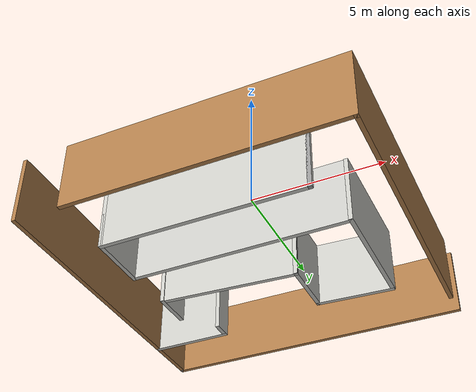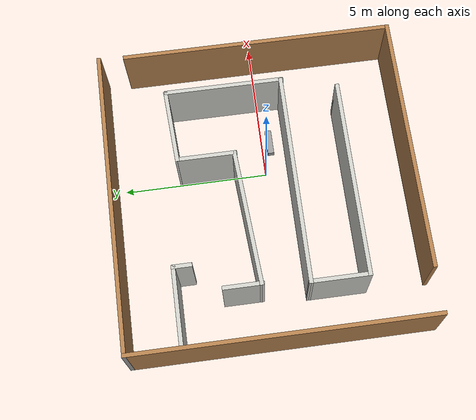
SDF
<?xml version='1.0'?>
<sdf version='1.7'>
  <model name='robot_camera_world'>
    <link name='link_0'>
      <inertial>
        <mass>1</mass>
        <inertia>
          <ixx>0.166667</ixx>
          <ixy>0</ixy>
          <ixz>0</ixz>
          <iyy>0.166667</iyy>
          <iyz>0</iyz>
          <izz>0.166667</izz>
        </inertia>
        <pose>0 0 0 0 -0 0</pose>
      </inertial>
      <pose>0.003185 -0.09834 2.91744 0 -0 0</pose>
      <gravity>1</gravity>
      <self_collide>0</self_collide>
      <kinematic>0</kinematic>
      <enable_wind>0</enable_wind>
      <visual name='visual'>
        <pose>0 0 0 0 -0 0</pose>
        <geometry>
          <box>
            <size>0.8 0.2 0.2</size>
          </box>
        </geometry>
        <material>
          <lighting>1</lighting>
          <script>
            <uri>file://media/materials/scripts/gazebo.material</uri>
            <name>Gazebo/Grey</name>
          </script>
          <shader type='pixel'>
            <normal_map>__default__</normal_map>
          </shader>
          <ambient>0.3 0.3 0.3 1</ambient>
          <diffuse>0.7 0.7 0.7 1</diffuse>
          <specular>0.01 0.01 0.01 1</specular>
          <emissive>0 0 0 1</emissive>
        </material>
        <transparency>0</transparency>
        <cast_shadows>1</cast_shadows>
      </visual>
      <collision name='collision'>
        <laser_retro>0</laser_retro>
        <max_contacts>10</max_contacts>
        <pose>0 0 0 0 -0 0</pose>
        <geometry>
          <box>
            <size>0.8 0.2 0.2</size>
          </box>
        </geometry>
        <surface>
          <friction>
            <ode>
              <mu>1</mu>
              <mu2>1</mu2>
              <fdir1>0 0 0</fdir1>
              <slip1>0</slip1>
              <slip2>0</slip2>
            </ode>
            <torsional>
              <coefficient>1</coefficient>
              <patch_radius>0</patch_radius>
              <surface_radius>0</surface_radius>
              <use_patch_radius>1</use_patch_radius>
              <ode>
                <slip>0</slip>
              </ode>
            </torsional>
          </friction>
          <bounce>
            <restitution_coefficient>0</restitution_coefficient>
            <threshold>1e+06</threshold>
          </bounce>
          <contact>
            <collide_without_contact>0</collide_without_contact>
            <collide_without_contact_bitmask>1</collide_without_contact_bitmask>
            <collide_bitmask>1</collide_bitmask>
            <ode>
              <soft_cfm>0</soft_cfm>
              <soft_erp>0.2</soft_erp>
              <kp>1e+13</kp>
              <kd>1</kd>
              <max_vel>0.01</max_vel>
              <min_depth>0</min_depth>
            </ode>
            <bullet>
              <split_impulse>1</split_impulse>
              <split_impulse_penetration_threshold>-0.01</split_impulse_penetration_threshold>
              <soft_cfm>0</soft_cfm>
              <soft_erp>0.2</soft_erp>
              <kp>1e+13</kp>
              <kd>1</kd>
            </bullet>
          </contact>
        </surface>
      </collision>
    </link>
    <model name='small_maze'>
      <pose>-0.003188 0.09834 -2.91744 0 -0 0</pose>
      <link name='Wall_16'>
        <collision name='Wall_16_Collision'>
          <geometry>
            <box>
              <size>11.5 0.15 2.5</size>
            </box>
          </geometry>
          <pose>0 0 1.25 0 -0 0</pose>
        </collision>
        <visual name='Wall_16_Visual'>
          <pose>0 0 1.25 0 -0 0</pose>
          <geometry>
            <box>
              <size>11.5 0.15 2.5</size>
            </box>
          </geometry>
          <material>
            <script>
              <uri>file://media/materials/scripts/gazebo.material</uri>
              <name>Gazebo/Wood</name>
            </script>
            <ambient>1 1 1 1</ambient>
          </material>
          <meta>
            <layer>0</layer>
          </meta>
        </visual>
        <pose>0 5.55 0 0 -0 3.14159</pose>
      </link>
      <link name='Wall_17'>
        <collision name='Wall_17_Collision'>
          <geometry>
            <box>
              <size>0.15 0.15 2.5</size>
            </box>
          </geometry>
          <pose>0 0 1.25 0 -0 0</pose>
        </collision>
        <visual name='Wall_17_Visual'>
          <pose>0 0 1.25 0 -0 0</pose>
          <geometry>
            <box>
              <size>0.15 0.15 2.5</size>
            </box>
          </geometry>
          <material>
            <script>
              <uri>file://media/materials/scripts/gazebo.material</uri>
              <name>Gazebo/Grey</name>
            </script>
            <ambient>1 1 1 1</ambient>
          </material>
          <meta>
            <layer>0</layer>
          </meta>
        </visual>
        <pose>-5.675 5.55 0 0 -0 0</pose>
      </link>
      <link name='Wall_18'>
        <collision name='Wall_18_Collision'>
          <geometry>
            <box>
              <size>11.25 0.15 2.5</size>
            </box>
          </geometry>
          <pose>0 0 1.25 0 -0 0</pose>
        </collision>
        <visual name='Wall_18_Visual'>
          <pose>0 0 1.25 0 -0 0</pose>
          <geometry>
            <box>
              <size>11.25 0.15 2.5</size>
            </box>
          </geometry>
          <material>
            <script>
              <uri>file://media/materials/scripts/gazebo.material</uri>
              <name>Gazebo/Wood</name>
            </script>
            <ambient>1 1 1 1</ambient>
          </material>
          <meta>
            <layer>0</layer>
          </meta>
        </visual>
        <pose>-5.675 0 0 0 -0 -1.5708</pose>
      </link>
      <link name='Wall_20'>
        <collision name='Wall_20_Collision'>
          <geometry>
            <box>
              <size>10.25 0.15 2.5</size>
            </box>
          </geometry>
          <pose>0 0 1.25 0 -0 0</pose>
        </collision>
        <visual name='Wall_20_Visual'>
          <pose>0 0 1.25 0 -0 0</pose>
          <geometry>
            <box>
              <size>10.25 0.15 2.5</size>
            </box>
          </geometry>
          <material>
            <script>
              <uri>file://media/materials/scripts/gazebo.material</uri>
              <name>Gazebo/Wood</name>
            </script>
            <ambient>1 1 1 1</ambient>
          </material>
          <meta>
            <layer>0</layer>
          </meta>
        </visual>
        <pose>5.64798 -0.5 0 0 -0 1.5708</pose>
      </link>
      <link name='Wall_25'>
        <collision name='Wall_25_Collision'>
          <geometry>
            <box>
              <size>1.5 0.15 2.5</size>
            </box>
          </geometry>
          <pose>0 0 1.25 0 -0 0</pose>
        </collision>
        <visual name='Wall_25_Visual'>
          <pose>0 0 1.25 0 -0 0</pose>
          <geometry>
            <box>
              <size>1.5 0.15 2.5</size>
            </box>
          </geometry>
          <material>
            <script>
              <uri>file://media/materials/scripts/gazebo.material</uri>
              <name>Gazebo/CeilingTiled</name>
            </script>
            <ambient>1 1 1 1</ambient>
          </material>
          <meta>
            <layer>0</layer>
          </meta>
        </visual>
        <pose>-3.78664 1.2164 0 0 -0 -1.5708</pose>
      </link>
      <link name='Wall_26'>
        <collision name='Wall_26_Collision'>
          <geometry>
            <box>
              <size>5.17173 0.15 2.5</size>
            </box>
          </geometry>
          <pose>0 0 1.25 0 -0 0</pose>
        </collision>
        <visual name='Wall_26_Visual'>
          <pose>0 0 1.25 0 -0 0</pose>
          <geometry>
            <box>
              <size>5.17173 0.15 2.5</size>
            </box>
          </geometry>
          <material>
            <script>
              <uri>file://media/materials/scripts/gazebo.material</uri>
              <name>Gazebo/CeilingTiled</name>
            </script>
            <ambient>1 1 1 1</ambient>
          </material>
          <meta>
            <layer>0</layer>
          </meta>
        </visual>
        <pose>-1.28174 0.740897 0 0 -0 0.068916</pose>
      </link>
      <link name='Wall_27'>
        <collision name='Wall_27_Collision'>
          <geometry>
            <box>
              <size>2.25 0.15 2.5</size>
            </box>
          </geometry>
          <pose>0 0 1.25 0 -0 0</pose>
        </collision>
        <visual name='Wall_27_Visual'>
          <pose>0 0 1.25 0 -0 0</pose>
          <geometry>
            <box>
              <size>2.25 0.15 2.5</size>
            </box>
          </geometry>
          <material>
            <script>
              <uri>file://media/materials/scripts/gazebo.material</uri>
              <name>Gazebo/CeilingTiled</name>
            </script>
            <ambient>1 1 1 1</ambient>
          </material>
          <meta>
            <layer>0</layer>
          </meta>
        </visual>
        <pose>1.22317 1.9372 0 0 -0 1.5708</pose>
      </link>
      <link name='Wall_28'>
        <collision name='Wall_28_Collision'>
          <geometry>
            <box>
              <size>2.86168 0.15 2.5</size>
            </box>
          </geometry>
          <pose>0 0 1.25 0 -0 0</pose>
        </collision>
        <visual name='Wall_28_Visual'>
          <pose>0 0 1.25 0 -0 0</pose>
          <geometry>
            <box>
              <size>2.86168 0.15 2.5</size>
            </box>
          </geometry>
          <material>
            <script>
              <uri>file://media/materials/scripts/gazebo.material</uri>
              <name>Gazebo/CeilingTiled</name>
            </script>
            <ambient>1 1 1 1</ambient>
          </material>
          <meta>
            <layer>0</layer>
          </meta>
        </visual>
        <pose>2.57666 3.09357 0 0 -0 0.058871</pose>
      </link>
      <link name='Wall_29'>
        <collision name='Wall_29_Collision'>
          <geometry>
            <box>
              <size>4.5 0.15 2.5</size>
            </box>
          </geometry>
          <pose>0 0 1.25 0 -0 0</pose>
        </collision>
        <visual name='Wall_29_Visual'>
          <pose>0 0 1.25 0 -0 0</pose>
          <geometry>
            <box>
              <size>4.5 0.15 2.5</size>
            </box>
          </geometry>
          <material>
            <script>
              <uri>file://media/materials/scripts/gazebo.material</uri>
              <name>Gazebo/CeilingTiled</name>
            </script>
            <ambient>1 1 1 1</ambient>
          </material>
          <meta>
            <layer>0</layer>
          </meta>
        </visual>
        <pose>3.95675 0.971745 0 0 -0 -1.5708</pose>
      </link>
      <link name='Wall_30'>
        <collision name='Wall_30_Collision'>
          <geometry>
            <box>
              <size>8.03221 0.15 2.5</size>
            </box>
          </geometry>
          <pose>0 0 1.25 0 -0 0</pose>
        </collision>
        <visual name='Wall_30_Visual'>
          <pose>0 0 1.25 0 -0 0</pose>
          <geometry>
            <box>
              <size>8.03221 0.15 2.5</size>
            </box>
          </geometry>
          <material>
            <script>
              <uri>file://media/materials/scripts/gazebo.material</uri>
              <name>Gazebo/CeilingTiled</name>
            </script>
            <ambient>1 1 1 1</ambient>
          </material>
          <meta>
            <layer>0</layer>
          </meta>
        </visual>
        <pose>-0.010937 -1.16333 0 0 -0 3.13821</pose>
      </link>
      <link name='Wall_31'>
        <collision name='Wall_31_Collision'>
          <geometry>
            <box>
              <size>2.25 0.15 2.5</size>
            </box>
          </geometry>
          <pose>0 0 1.25 0 -0 0</pose>
        </collision>
        <visual name='Wall_31_Visual'>
          <pose>0 0 1.25 0 -0 0</pose>
          <geometry>
            <box>
              <size>2.25 0.15 2.5</size>
            </box>
          </geometry>
          <material>
            <script>
              <uri>file://media/materials/scripts/gazebo.material</uri>
              <name>Gazebo/CeilingTiled</name>
            </script>
            <ambient>1 1 1 1</ambient>
          </material>
          <meta>
            <layer>0</layer>
          </meta>
        </visual>
        <pose>-3.95202 -2.2 0 0 -0 -1.5708</pose>
      </link>
      <link name='Wall_32'>
        <collision name='Wall_32_Collision'>
          <geometry>
            <box>
              <size>7.5 0.15 2.5</size>
            </box>
          </geometry>
          <pose>0 0 1.25 0 -0 0</pose>
        </collision>
        <visual name='Wall_32_Visual'>
          <pose>0 0 1.25 0 -0 0</pose>
          <geometry>
            <box>
              <size>7.5 0.15 2.5</size>
            </box>
          </geometry>
          <material>
            <script>
              <uri>file://media/materials/scripts/gazebo.material</uri>
              <name>Gazebo/CeilingTiled</name>
            </script>
            <ambient>1 1 1 1</ambient>
          </material>
          <meta>
            <layer>0</layer>
          </meta>
        </visual>
        <pose>-0.277018 -3.25 0 0 -0 0</pose>
      </link>
      <link name='Wall_33'>
        <collision name='Wall_33_Collision'>
          <geometry>
            <box>
              <size>0.15 0.15 2.5</size>
            </box>
          </geometry>
          <pose>0 0 1.25 0 -0 0</pose>
        </collision>
        <visual name='Wall_33_Visual'>
          <pose>0 0 1.25 0 -0 0</pose>
          <geometry>
            <box>
              <size>0.15 0.15 2.5</size>
            </box>
          </geometry>
          <material>
            <script>
              <uri>file://media/materials/scripts/gazebo.material</uri>
              <name>Gazebo/Grey</name>
            </script>
            <ambient>1 1 1 1</ambient>
          </material>
          <meta>
            <layer>0</layer>
          </meta>
        </visual>
        <pose>3.39798 -3.25 0 0 -0 0</pose>
      </link>
      <link name='Wall_35'>
        <collision name='Wall_35_Collision'>
          <geometry>
            <box>
              <size>3 0.15 2.5</size>
            </box>
          </geometry>
          <pose>0 0 1.25 0 -0 0</pose>
        </collision>
        <visual name='Wall_35_Visual'>
          <pose>0 0 1.25 0 -0 0</pose>
          <geometry>
            <box>
              <size>3 0.15 2.5</size>
            </box>
          </geometry>
          <material>
            <script>
              <uri>file://media/materials/scripts/gazebo.material</uri>
              <name>Gazebo/CeilingTiled</name>
            </script>
            <ambient>1 1 1 1</ambient>
          </material>
          <meta>
            <layer>0</layer>
          </meta>
        </visual>
        <pose>-4.22405 3.57609 0 0 -0 0</pose>
      </link>
      <link name='Wall_40'>
        <collision name='Wall_40_Collision'>
          <geometry>
            <box>
              <size>0.75 0.15 2.5</size>
            </box>
          </geometry>
          <pose>0 0 1.25 0 -0 0</pose>
        </collision>
        <visual name='Wall_40_Visual'>
          <pose>0 0 1.25 0 -0 0</pose>
          <geometry>
            <box>
              <size>0.75 0.15 2.5</size>
            </box>
          </geometry>
          <material>
            <script>
              <uri>file://media/materials/scripts/gazebo.material</uri>
              <name>Gazebo/CeilingTiled</name>
            </script>
            <ambient>1 1 1 1</ambient>
          </material>
          <meta>
            <layer>0</layer>
          </meta>
        </visual>
        <pose>-2.79905 3.27609 0 0 -0 -1.5708</pose>
      </link>
      <link name='Wall_9'>
        <collision name='Wall_9_Collision'>
          <geometry>
            <box>
              <size>9.75 0.15 2.5</size>
            </box>
          </geometry>
          <pose>0 0 1.25 0 -0 0</pose>
        </collision>
        <visual name='Wall_9_Visual'>
          <pose>0 0 1.25 0 -0 0</pose>
          <geometry>
            <box>
              <size>9.75 0.15 2.5</size>
            </box>
          </geometry>
          <material>
            <script>
              <uri>file://media/materials/scripts/gazebo.material</uri>
              <name>Gazebo/Wood</name>
            </script>
            <ambient>1 1 1 1</ambient>
          </material>
          <meta>
            <layer>0</layer>
          </meta>
        </visual>
        <pose>0.847982 -5.55 0 0 -0 3.14159</pose>
      </link>
      <static>1</static>
    </model>
    <static>0</static>
    <allow_auto_disable>1</allow_auto_disable>
  </model>
</sdf>
